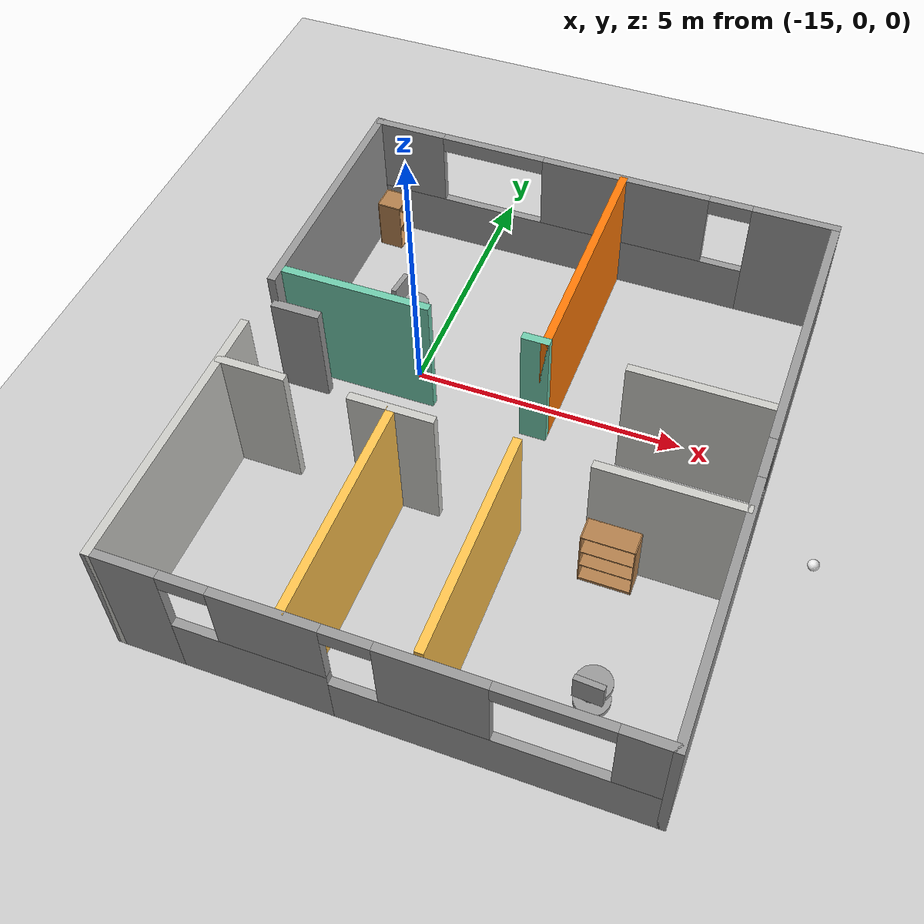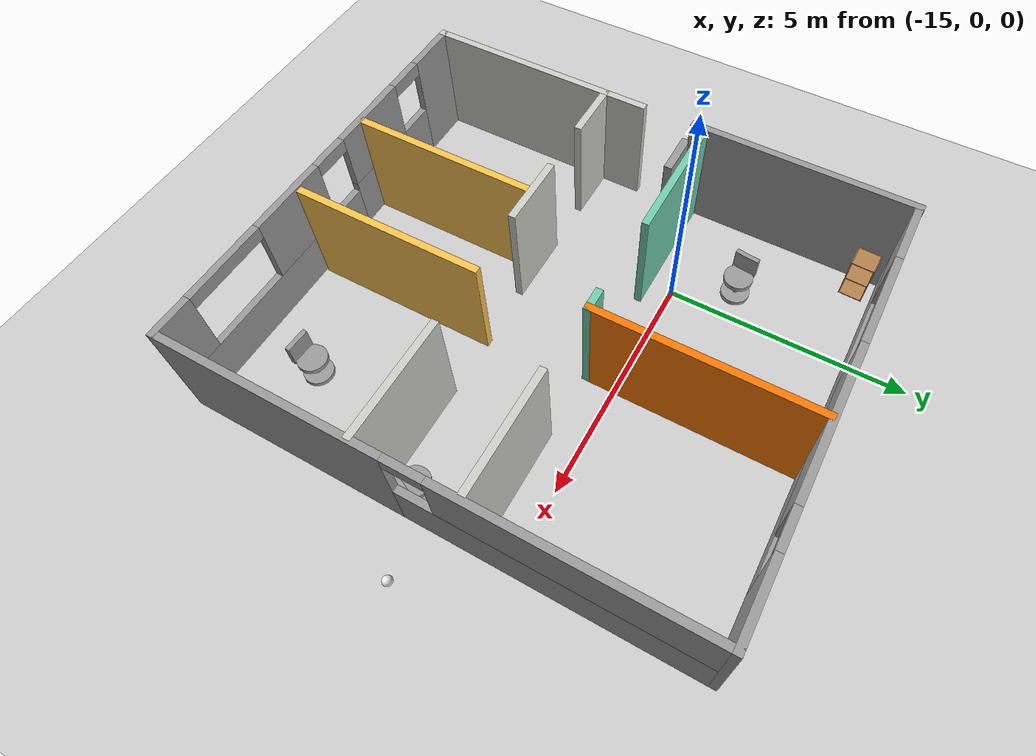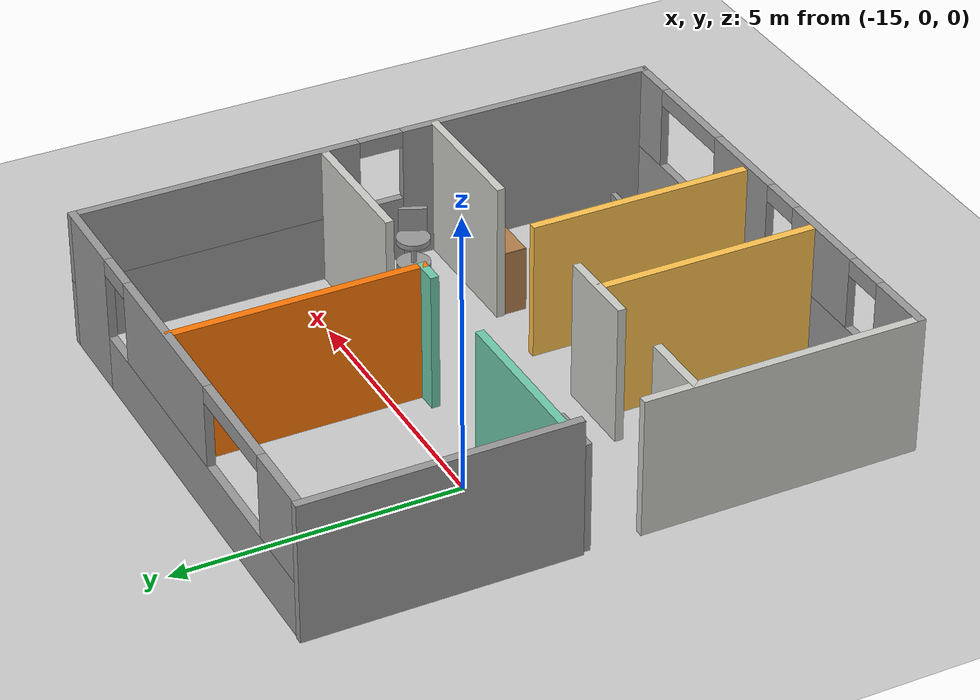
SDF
<sdf version="1.6">
 <world name="default">
  <plugin name="welcome" filename="libwelcome.so"/>
  <light name="sun" type="directional">
   <pose>0 0 10 0 -0 0</pose>
   <diffuse>0.8 0.8 0.8 1</diffuse>
   <specular>0.2 0.2 0.2 1</specular>
   <attenuation>
    <range>1000</range>
    <constant>0.9</constant>
    <linear>0.01</linear>
    <quadratic>0.001</quadratic>
   </attenuation>
   <direction>-0.5 0.1 -0.9</direction>
  </light>
  <model name="ground_plane">
   <static>1</static>
   <link name="link">
    <collision name="collision">
     <geometry><plane><normal>0 0 1</normal><size>100 100</size></plane></geometry>
     <surface>
      <contact><collide_bitmask>65535</collide_bitmask></contact>
      <friction><ode><mu>100</mu><mu2>50</mu2></ode></friction>
     </surface>
    </collision>
    <visual name="visual">
     <cast_shadows>0</cast_shadows>
     <geometry><plane><normal>0 0 1</normal><size>100 100</size></plane></geometry>
     <material>
      <script><uri>file://media/materials/scripts/gazebo.material</uri><name>Gazebo/Grey</name></script>
     </material>
    </visual>
   </link>
  </model>
  <gravity>0 0 -9.8</gravity>
  <magnetic_field>6e-06 2.3e-05 -4.2e-05</magnetic_field>
  <atmosphere type="adiabatic"/>
  <physics name="default_physics" default="0" type="ode">
   <max_step_size>0.001</max_step_size>
   <real_time_factor>1</real_time_factor>
   <real_time_update_rate>1000</real_time_update_rate>
  </physics>
  <scene><ambient>0.4 0.4 0.4 1</ambient><background>0.7 0.7 0.7 1</background><shadows>1</shadows></scene>
  <spherical_coordinates>
   <surface_model>EARTH_WGS84</surface_model>
   <latitude_deg>0</latitude_deg>
   <longitude_deg>0</longitude_deg>
   <elevation>0</elevation>
   <heading_deg>0</heading_deg>
  </spherical_coordinates>
  <model name="Flat">
   <pose>-12.8541 -1.50276 0 0 -0 0</pose>
   <link name="Door_0">
    <collision name="Door_0_Collision">
     <geometry><box><size>0.9 0.17 2</size></box></geometry>
     <pose>0 0 1 0 -0 0</pose>
    </collision>
    <visual name="Door_0_Visual">
     <pose>0 0 1 0 -0 0</pose>
     <geometry><box><size>0.9 0.17 2</size></box></geometry>
     <material>
      <script><uri>file://media/materials/scripts/gazebo.material</uri><name>Gazebo/Grey</name></script>
     </material>
    </visual>
    <pose>-3.99692 0.566674 0 0 -0 0</pose>
   </link>
   <link name="Wall_0">
    <collision name="Wall_0_Collision">
     <geometry><box><size>4.75 0.15 2.5</size></box></geometry>
     <pose>0 0 1.25 0 -0 0</pose>
    </collision>
    <visual name="Wall_0_Visual">
     <pose>0 0 1.25 0 -0 0</pose>
     <geometry><box><size>4.75 0.15 2.5</size></box></geometry>
     <material>
      <script><uri>file://media/materials/scripts/gazebo.material</uri><name>Gazebo/Grey</name></script>
      <ambient>1 1 1 1</ambient>
     </material>
     <meta><layer>0</layer></meta>
    </visual>
    <pose>-4.44029 3.00755 0 0 0 -1.5708</pose>
   </link>
   <link name="Wall_10">
    <pose>0.015295 5.29245 0 0 -0 3.14159</pose>
    <visual name="Wall_10_Visual_0">
     <pose>-3.70189 0 1.25 0 -0 0</pose>
     <geometry><box><size>1.59621 0.15 2.5</size></box></geometry>
     <material>
      <script><uri>file://media/materials/scripts/gazebo.material</uri><name>Gazebo/Grey</name></script>
      <ambient>1 1 1 1</ambient>
     </material>
     <meta><layer>0</layer></meta>
    </visual>
    <collision name="Wall_10_Collision_0">
     <geometry><box><size>1.59621 0.15 2.5</size></box></geometry>
     <pose>-3.70189 0 1.25 0 -0 0</pose>
    </collision>
    <visual name="Wall_10_Visual_1">
     <pose>0.798106 0 0.5 0 -0 0</pose>
     <geometry><box><size>7.40379 0.15 1</size></box></geometry>
     <material>
      <script><uri>file://media/materials/scripts/gazebo.material</uri><name>Gazebo/Grey</name></script>
      <ambient>1 1 1 1</ambient>
     </material>
     <meta><layer>0</layer></meta>
    </visual>
    <collision name="Wall_10_Collision_1">
     <geometry><box><size>7.40379 0.15 1</size></box></geometry>
     <pose>0.798106 0 0.5 0 -0 0</pose>
    </collision>
    <visual name="Wall_10_Visual_2">
     <pose>-0.499578 0 1.75 0 -0 0</pose>
     <geometry><box><size>3.20842 0.15 1.5</size></box></geometry>
     <material>
      <script><uri>file://media/materials/scripts/gazebo.material</uri><name>Gazebo/Grey</name></script>
      <ambient>1 1 1 1</ambient>
     </material>
     <meta><layer>0</layer></meta>
    </visual>
    <collision name="Wall_10_Collision_2">
     <geometry><box><size>3.20842 0.15 1.5</size></box></geometry>
     <pose>-0.499578 0 1.75 0 -0 0</pose>
    </collision>
    <visual name="Wall_10_Visual_3">
     <pose>3.80232 0 1.75 0 -0 0</pose>
     <geometry><box><size>1.39537 0.15 1.5</size></box></geometry>
     <material>
      <script><uri>file://media/materials/scripts/gazebo.material</uri><name>Gazebo/Grey</name></script>
      <ambient>1 1 1 1</ambient>
     </material>
     <meta><layer>0</layer></meta>
    </visual>
    <collision name="Wall_10_Collision_3">
     <geometry><box><size>1.39537 0.15 1.5</size></box></geometry>
     <pose>3.80232 0 1.75 0 -0 0</pose>
    </collision>
    <visual name="Wall_10_Visual_4">
     <pose>-2.50379 0 2.35 0 -0 0</pose>
     <geometry><box><size>0.8 0.15 0.3</size></box></geometry>
     <material>
      <script><uri>file://media/materials/scripts/gazebo.material</uri><name>Gazebo/Grey</name></script>
      <ambient>1 1 1 1</ambient>
     </material>
     <meta><layer>0</layer></meta>
    </visual>
    <collision name="Wall_10_Collision_4">
     <geometry><box><size>0.8 0.15 0.3</size></box></geometry>
     <pose>-2.50379 0 2.35 0 -0 0</pose>
    </collision>
    <visual name="Wall_10_Visual_5">
     <pose>2.10463 0 2.35 0 -0 0</pose>
     <geometry><box><size>2 0.15 0.3</size></box></geometry>
     <material>
      <script><uri>file://media/materials/scripts/gazebo.material</uri><name>Gazebo/Grey</name></script>
      <ambient>1 1 1 1</ambient>
     </material>
     <meta><layer>0</layer></meta>
    </visual>
    <collision name="Wall_10_Collision_5">
     <geometry><box><size>2 0.15 0.3</size></box></geometry>
     <pose>2.10463 0 2.35 0 -0 0</pose>
    </collision>
   </link>
   <link name="Wall_12">
    <collision name="Wall_12_Collision">
     <geometry><box><size>1.25 0.15 2.5</size></box></geometry>
     <pose>0 0 1.25 0 -0 0</pose>
    </collision>
    <visual name="Wall_12_Visual">
     <pose>0 0 1.25 0 -0 0</pose>
     <geometry><box><size>1.25 0.15 2.5</size></box></geometry>
     <material>
      <script><uri>file://media/materials/scripts/gazebo.material</uri><name>Gazebo/CeilingTiled</name></script>
      <ambient>1 1 1 1</ambient>
     </material>
     <meta><layer>0</layer></meta>
    </visual>
    <pose>-3.83383 -1.31025 0 0 -0 0</pose>
   </link>
   <link name="Wall_14">
    <collision name="Wall_14_Collision">
     <geometry><box><size>1.5 0.15 2.5</size></box></geometry>
     <pose>0 0 1.25 0 -0 0</pose>
    </collision>
    <visual name="Wall_14_Visual">
     <pose>0 0 1.25 0 -0 0</pose>
     <geometry><box><size>1.5 0.15 2.5</size></box></geometry>
     <material>
      <script><uri>file://media/materials/scripts/gazebo.material</uri><name>Gazebo/CeilingTiled</name></script>
      <ambient>0.435294 0.796078 0.67451 1</ambient>
     </material>
     <meta><layer>0</layer></meta>
    </visual>
    <pose>-1.35719 -1.29981 0 0 -0 3.14159</pose>
   </link>
   <link name="Wall_16">
    <collision name="Wall_16_Collision">
     <geometry><box><size>2.5 0.15 2.5</size></box></geometry>
     <pose>0 0 1.25 0 -0 0</pose>
    </collision>
    <visual name="Wall_16_Visual">
     <pose>0 0 1.25 0 -0 0</pose>
     <geometry><box><size>2.5 0.15 2.5</size></box></geometry>
     <material>
      <script><uri>file://media/materials/scripts/gazebo.material</uri><name>Gazebo/CeilingTiled</name></script>
      <ambient>1 1 1 1</ambient>
     </material>
     <meta><layer>0</layer></meta>
    </visual>
    <pose>3.20856 -1.26463 0 0 -0 3.14159</pose>
   </link>
   <link name="Wall_21">
    <collision name="Wall_21_Collision">
     <geometry><box><size>4 0.15 2.5</size></box></geometry>
     <pose>0 0 1.25 0 -0 0</pose>
    </collision>
    <visual name="Wall_21_Visual">
     <pose>0 0 1.25 0 -0 0</pose>
     <geometry><box><size>4 0.15 2.5</size></box></geometry>
     <material>
      <script><uri>file://media/materials/scripts/gazebo.material</uri><name>Gazebo/Grey</name></script>
      <ambient>1 0.764706 0.305882 1</ambient>
     </material>
     <meta><layer>0</layer></meta>
    </visual>
    <pose>0.724965 -3.18963 0 0 0 -1.5708</pose>
   </link>
   <link name="Wall_23">
    <collision name="Wall_23_Collision">
     <geometry><box><size>4 0.15 2.5</size></box></geometry>
     <pose>0 0 1.25 0 -0 0</pose>
    </collision>
    <visual name="Wall_23_Visual">
     <pose>0 0 1.25 0 -0 0</pose>
     <geometry><box><size>4 0.15 2.5</size></box></geometry>
     <material>
      <script><uri>file://media/materials/scripts/gazebo.material</uri><name>Gazebo/Grey</name></script>
      <ambient>1 0.764706 0.305882 1</ambient>
     </material>
     <meta><layer>0</layer></meta>
    </visual>
    <pose>-1.35058 -3.29517 0 0 0 -1.5708</pose>
   </link>
   <link name="Wall_25">
    <collision name="Wall_25_Collision">
     <geometry><box><size>2.5 0.15 2.5</size></box></geometry>
     <pose>0 0 1.25 0 -0 0</pose>
    </collision>
    <visual name="Wall_25_Visual">
     <pose>0 0 1.25 0 -0 0</pose>
     <geometry><box><size>2.5 0.15 2.5</size></box></geometry>
     <material>
      <script><uri>file://media/materials/scripts/gazebo.material</uri><name>Gazebo/CeilingTiled</name></script>
      <ambient>1 1 1 1</ambient>
     </material>
     <meta><layer>0</layer></meta>
    </visual>
    <pose>3.13122 0.810917 0 0 -0 0</pose>
   </link>
   <link name="Wall_27">
    <collision name="Wall_27_Collision">
     <geometry><box><size>4.5 0.15 2.5</size></box></geometry>
     <pose>0 0 1.25 0 -0 0</pose>
    </collision>
    <visual name="Wall_27_Visual">
     <pose>0 0 1.25 0 -0 0</pose>
     <geometry><box><size>4.5 0.15 2.5</size></box></geometry>
     <material>
      <script><uri>file://media/materials/scripts/gazebo.material</uri><name>Gazebo/Grey</name></script>
      <ambient>0.996078 0.47451 0.0196078 1</ambient>
     </material>
     <meta><layer>0</layer></meta>
    </visual>
    <pose>0.478714 3.06844 0 0 0 -1.5708</pose>
   </link>
   <link name="Wall_32">
    <collision name="Wall_32_Collision">
     <geometry><box><size>2.75 0.15 2.5</size></box></geometry>
     <pose>0 0 1.25 0 -0 0</pose>
    </collision>
    <visual name="Wall_32_Visual">
     <pose>0 0 1.25 0 -0 0</pose>
     <geometry><box><size>2.75 0.15 2.5</size></box></geometry>
     <material>
      <script><uri>file://media/materials/scripts/gazebo.material</uri><name>Gazebo/Grey</name></script>
      <ambient>0.435294 0.796078 0.67451 1</ambient>
     </material>
     <meta><layer>0</layer></meta>
    </visual>
    <pose>-3.00237 0.951632 0 0 -0 3.14159</pose>
   </link>
   <link name="Wall_34">
    <collision name="Wall_34_Collision">
     <geometry><box><size>0.5 0.15 2.5</size></box></geometry>
     <pose>0 0 1.25 0 -0 0</pose>
    </collision>
    <visual name="Wall_34_Visual">
     <pose>0 0 1.25 0 -0 0</pose>
     <geometry><box><size>0.5 0.15 2.5</size></box></geometry>
     <material>
      <script><uri>file://media/materials/scripts/gazebo.material</uri><name>Gazebo/Grey</name></script>
      <ambient>0.435294 0.796078 0.67451 1</ambient>
     </material>
     <meta><layer>0</layer></meta>
    </visual>
    <pose>0.303714 0.893441 0 0 -0 3.14159</pose>
   </link>
   <link name="Wall_5">
    <collision name="Wall_5_Collision">
     <geometry><box><size>5 0.15 2.5</size></box></geometry>
     <pose>0 0 1.25 0 -0 0</pose>
    </collision>
    <visual name="Wall_5_Visual">
     <pose>0 0 1.25 0 -0 0</pose>
     <geometry><box><size>5 0.15 2.5</size></box></geometry>
     <material>
      <script><uri>file://media/materials/scripts/gazebo.material</uri><name>Gazebo/CeilingTiled</name></script>
      <ambient>1 1 1 1</ambient>
     </material>
     <meta><layer>0</layer></meta>
    </visual>
    <pose>-4.4097 -2.88255 0 0 0 -1.5708</pose>
   </link>
   <link name="Wall_8">
    <pose>0.015295 -5.30755 0 0 -0 0</pose>
    <visual name="Wall_8_Visual_0">
     <pose>-3.8941 0 1.25 0 -0 0</pose>
     <geometry><box><size>1.21179 0.15 2.5</size></box></geometry>
     <material>
      <script><uri>file://media/materials/scripts/gazebo.material</uri><name>Gazebo/Grey</name></script>
      <ambient>1 1 1 1</ambient>
     </material>
     <meta><layer>0</layer></meta>
    </visual>
    <collision name="Wall_8_Collision_0">
     <geometry><box><size>1.21179 0.15 2.5</size></box></geometry>
     <pose>-3.8941 0 1.25 0 -0 0</pose>
    </collision>
    <visual name="Wall_8_Visual_1">
     <pose>-2.00994 0 0.6 0 -0 0</pose>
     <geometry><box><size>2.55653 0.15 1.2</size></box></geometry>
     <material>
      <script><uri>file://media/materials/scripts/gazebo.material</uri><name>Gazebo/Grey</name></script>
      <ambient>1 1 1 1</ambient>
     </material>
     <meta><layer>0</layer></meta>
    </visual>
    <collision name="Wall_8_Collision_1">
     <geometry><box><size>2.55653 0.15 1.2</size></box></geometry>
     <pose>-2.00994 0 0.6 0 -0 0</pose>
    </collision>
    <visual name="Wall_8_Visual_2">
     <pose>1.88416 0 0.5 0 -0 0</pose>
     <geometry><box><size>5.23168 0.15 1</size></box></geometry>
     <material>
      <script><uri>file://media/materials/scripts/gazebo.material</uri><name>Gazebo/Grey</name></script>
      <ambient>1 1 1 1</ambient>
     </material>
     <meta><layer>0</layer></meta>
    </visual>
    <collision name="Wall_8_Collision_2">
     <geometry><box><size>5.23168 0.15 1</size></box></geometry>
     <pose>1.88416 0 0.5 0 -0 0</pose>
    </collision>
    <visual name="Wall_8_Visual_3">
     <pose>0.935405 0 1.75 0 -0 0</pose>
     <geometry><box><size>1.73417 0.15 1.5</size></box></geometry>
     <material>
      <script><uri>file://media/materials/scripts/gazebo.material</uri><name>Gazebo/Grey</name></script>
      <ambient>1 1 1 1</ambient>
     </material>
     <meta><layer>0</layer></meta>
    </visual>
    <collision name="Wall_8_Collision_3">
     <geometry><box><size>1.73417 0.15 1.5</size></box></geometry>
     <pose>0.935405 0 1.75 0 -0 0</pose>
    </collision>
    <visual name="Wall_8_Visual_4">
     <pose>4.05124 0 1.75 0 -0 0</pose>
     <geometry><box><size>0.897511 0.15 1.5</size></box></geometry>
     <material>
      <script><uri>file://media/materials/scripts/gazebo.material</uri><name>Gazebo/Grey</name></script>
      <ambient>1 1 1 1</ambient>
     </material>
     <meta><layer>0</layer></meta>
    </visual>
    <collision name="Wall_8_Collision_4">
     <geometry><box><size>0.897511 0.15 1.5</size></box></geometry>
     <pose>4.05124 0 1.75 0 -0 0</pose>
    </collision>
    <visual name="Wall_8_Visual_5">
     <pose>-1.60994 0 1.85 0 -0 0</pose>
     <geometry><box><size>1.75653 0.15 1.3</size></box></geometry>
     <material>
      <script><uri>file://media/materials/scripts/gazebo.material</uri><name>Gazebo/Grey</name></script>
      <ambient>1 1 1 1</ambient>
     </material>
     <meta><layer>0</layer></meta>
    </visual>
    <collision name="Wall_8_Collision_5">
     <geometry><box><size>1.75653 0.15 1.3</size></box></geometry>
     <pose>-1.60994 0 1.85 0 -0 0</pose>
    </collision>
    <visual name="Wall_8_Visual_6">
     <pose>2.70249 0 2.35 0 -0 0</pose>
     <geometry><box><size>1.8 0.15 0.3</size></box></geometry>
     <material>
      <script><uri>file://media/materials/scripts/gazebo.material</uri><name>Gazebo/Grey</name></script>
      <ambient>1 1 1 1</ambient>
     </material>
     <meta><layer>0</layer></meta>
    </visual>
    <collision name="Wall_8_Collision_6">
     <geometry><box><size>1.8 0.15 0.3</size></box></geometry>
     <pose>2.70249 0 2.35 0 -0 0</pose>
    </collision>
    <visual name="Wall_8_Visual_7">
     <pose>-0.331679 0 2.35 0 -0 0</pose>
     <geometry><box><size>0.8 0.15 0.3</size></box></geometry>
     <material>
      <script><uri>file://media/materials/scripts/gazebo.material</uri><name>Gazebo/Grey</name></script>
      <ambient>1 1 1 1</ambient>
     </material>
     <meta><layer>0</layer></meta>
    </visual>
    <collision name="Wall_8_Collision_7">
     <geometry><box><size>0.8 0.15 0.3</size></box></geometry>
     <pose>-0.331679 0 2.35 0 -0 0</pose>
    </collision>
    <visual name="Wall_8_Visual_8">
     <pose>-2.88821 0 2.35 0 -0 0</pose>
     <geometry><box><size>0.8 0.15 0.3</size></box></geometry>
     <material>
      <script><uri>file://media/materials/scripts/gazebo.material</uri><name>Gazebo/Grey</name></script>
      <ambient>1 1 1 1</ambient>
     </material>
     <meta><layer>0</layer></meta>
    </visual>
    <collision name="Wall_8_Collision_8">
     <geometry><box><size>0.8 0.15 0.3</size></box></geometry>
     <pose>-2.88821 0 2.35 0 -0 0</pose>
    </collision>
   </link>
   <link name="Wall_9">
    <pose>4.44029 -0.007551 0 0 -0 1.5708</pose>
    <visual name="Wall_9_Visual_0">
     <pose>-2.99698 0 1.25 0 -0 0</pose>
     <geometry><box><size>4.75604 0.15 2.5</size></box></geometry>
     <material>
      <script><uri>file://media/materials/scripts/gazebo.material</uri><name>Gazebo/Grey</name></script>
      <ambient>1 1 1 1</ambient>
     </material>
     <meta><layer>0</layer></meta>
    </visual>
    <collision name="Wall_9_Collision_0">
     <geometry><box><size>4.75604 0.15 2.5</size></box></geometry>
     <pose>-2.99698 0 1.25 0 -0 0</pose>
    </collision>
    <visual name="Wall_9_Visual_1">
     <pose>2.37802 0 0.6 0 -0 0</pose>
     <geometry><box><size>5.99396 0.15 1.2</size></box></geometry>
     <material>
      <script><uri>file://media/materials/scripts/gazebo.material</uri><name>Gazebo/Grey</name></script>
      <ambient>1 1 1 1</ambient>
     </material>
     <meta><layer>0</layer></meta>
    </visual>
    <collision name="Wall_9_Collision_1">
     <geometry><box><size>5.99396 0.15 1.2</size></box></geometry>
     <pose>2.37802 0 0.6 0 -0 0</pose>
    </collision>
    <visual name="Wall_9_Visual_2">
     <pose>2.77802 0 1.85 0 -0 0</pose>
     <geometry><box><size>5.19396 0.15 1.3</size></box></geometry>
     <material>
      <script><uri>file://media/materials/scripts/gazebo.material</uri><name>Gazebo/Grey</name></script>
      <ambient>1 1 1 1</ambient>
     </material>
     <meta><layer>0</layer></meta>
    </visual>
    <collision name="Wall_9_Collision_2">
     <geometry><box><size>5.19396 0.15 1.3</size></box></geometry>
     <pose>2.77802 0 1.85 0 -0 0</pose>
    </collision>
    <visual name="Wall_9_Visual_3">
     <pose>-0.218958 0 2.35 0 -0 0</pose>
     <geometry><box><size>0.8 0.15 0.3</size></box></geometry>
     <material>
      <script><uri>file://media/materials/scripts/gazebo.material</uri><name>Gazebo/Grey</name></script>
      <ambient>1 1 1 1</ambient>
     </material>
     <meta><layer>0</layer></meta>
    </visual>
    <collision name="Wall_9_Collision_3">
     <geometry><box><size>0.8 0.15 0.3</size></box></geometry>
     <pose>-0.218958 0 2.35 0 -0 0</pose>
    </collision>
   </link>
   <static>1</static>
  </model>
  <model name="bookshelf">
   <static>1</static>
   <link name="link">
    <inertial><mass>1</mass></inertial>
    <collision name="back">
     <pose>0 0.005 0.6 0 -0 0</pose>
     <geometry><box><size>0.9 0.01 1.2</size></box></geometry>
    </collision>
    <visual name="visual1">
     <pose>0 0.005 0.6 0 -0 0</pose>
     <geometry><box><size>0.9 0.01 1.2</size></box></geometry>
     <material>
      <script><uri>file://media/materials/scripts/gazebo.material</uri><name>Gazebo/Wood</name></script>
     </material>
    </visual>
    <collision name="left_side">
     <pose>0.45 -0.195 0.6 0 -0 0</pose>
     <geometry><box><size>0.02 0.4 1.2</size></box></geometry>
    </collision>
    <visual name="visual2">
     <pose>0.45 -0.195 0.6 0 -0 0</pose>
     <geometry><box><size>0.02 0.4 1.2</size></box></geometry>
     <material>
      <script><uri>file://media/materials/scripts/gazebo.material</uri><name>Gazebo/Wood</name></script>
     </material>
    </visual>
    <collision name="right_side">
     <pose>-0.45 -0.195 0.6 0 -0 0</pose>
     <geometry><box><size>0.02 0.4 1.2</size></box></geometry>
    </collision>
    <visual name="visual3">
     <pose>-0.45 -0.195 0.6 0 -0 0</pose>
     <geometry><box><size>0.02 0.4 1.2</size></box></geometry>
     <material>
      <script><uri>file://media/materials/scripts/gazebo.material</uri><name>Gazebo/Wood</name></script>
     </material>
    </visual>
    <collision name="bottom">
     <pose>0 -0.195 0.03 0 -0 0</pose>
     <geometry><box><size>0.88 0.4 0.06</size></box></geometry>
    </collision>
    <visual name="visual4">
     <pose>0 -0.195 0.03 0 -0 0</pose>
     <geometry><box><size>0.88 0.4 0.06</size></box></geometry>
     <material>
      <script><uri>file://media/materials/scripts/gazebo.material</uri><name>Gazebo/Wood</name></script>
     </material>
    </visual>
    <collision name="top">
     <pose>0 -0.195 1.19 0 -0 0</pose>
     <geometry><box><size>0.88 0.4 0.02</size></box></geometry>
    </collision>
    <visual name="visual5">
     <pose>0 -0.195 1.19 0 -0 0</pose>
     <geometry><box><size>0.88 0.4 0.02</size></box></geometry>
     <material>
      <script><uri>file://media/materials/scripts/gazebo.material</uri><name>Gazebo/Wood</name></script>
     </material>
    </visual>
    <collision name="low_shelf">
     <pose>0 -0.195 0.43 0 -0 0</pose>
     <geometry><box><size>0.88 0.4 0.02</size></box></geometry>
    </collision>
    <visual name="visual6">
     <pose>0 -0.195 0.43 0 -0 0</pose>
     <geometry><box><size>0.88 0.4 0.02</size></box></geometry>
     <material>
      <script><uri>file://media/materials/scripts/gazebo.material</uri><name>Gazebo/Wood</name></script>
     </material>
    </visual>
    <collision name="high_shelf">
     <pose>0 -0.195 0.8 0 -0 0</pose>
     <geometry><box><size>0.88 0.4 0.02</size></box></geometry>
    </collision>
    <visual name="visual7">
     <pose>0 -0.195 0.8 0 -0 0</pose>
     <geometry><box><size>0.88 0.4 0.02</size></box></geometry>
     <material>
      <script><uri>file://media/materials/scripts/gazebo.material</uri><name>Gazebo/Wood</name></script>
     </material>
    </visual>
   </link>
   <pose>-10.4103 -2.86278 0 0 -0 0</pose>
  </model>
  <model name="cabinet">
   <static>1</static>
   <link name="cabinet_bottom_plate">
    <inertial>
     <pose>0 0 -1 0 -0 0</pose>
     <inertia><ixx>2.05</ixx><ixy>0</ixy><ixz>0</ixz><iyy>2.05</iyy><iyz>0</iyz><izz>2.05</izz></inertia>
     <mass>25</mass>
    </inertial>
    <collision name="cabinet_bottom_plate_geom">
     <pose>0 0 0.01 0 -0 0</pose>
     <geometry><box><size>0.45 0.45 0.02</size></box></geometry>
    </collision>
    <visual name="cabinet_bottom_plate_geom_visual">
     <pose>0 0 0.01 0 -0 0</pose>
     <geometry><box><size>0.45 0.45 0.02</size></box></geometry>
     <material>
      <script><uri>file://media/materials/scripts/gazebo.material</uri><name>Gazebo/Wood</name></script>
     </material>
    </visual>
    <collision name="cabinet_bottom_plate_geom_cabinet_back_plate">
     <pose>0.235 0 0.51 0 -0 0</pose>
     <geometry><box><size>0.02 0.45 1.02</size></box></geometry>
    </collision>
    <visual name="cabinet_bottom_plate_geom_cabinet_back_plate_visual">
     <pose>0.235 0 0.51 0 -0 0</pose>
     <geometry><box><size>0.02 0.45 1.02</size></box></geometry>
     <material>
      <script><uri>file://media/materials/scripts/gazebo.material</uri><name>Gazebo/Wood</name></script>
     </material>
    </visual>
    <collision name="cabinet_bottom_plate_geom_cabinet_left_plate">
     <pose>0 0.235 0.51 0 -0 0</pose>
     <geometry><box><size>0.45 0.02 1.02</size></box></geometry>
    </collision>
    <visual name="cabinet_bottom_plate_geom_cabinet_left_plate_visual">
     <pose>0 0.235 0.51 0 -0 0</pose>
     <geometry><box><size>0.45 0.02 1.02</size></box></geometry>
     <material>
      <script><uri>file://media/materials/scripts/gazebo.material</uri><name>Gazebo/Wood</name></script>
     </material>
    </visual>
    <collision name="cabinet_bottom_plate_geom_cabinet_middle_plate">
     <pose>0 0 0.51 0 -0 0</pose>
     <geometry><box><size>0.45 0.45 0.02</size></box></geometry>
    </collision>
    <visual name="cabinet_bottom_plate_geom_cabinet_middle_plate_visual">
     <pose>0 0 0.51 0 -0 0</pose>
     <geometry><box><size>0.45 0.45 0.02</size></box></geometry>
     <material>
      <script><uri>file://media/materials/scripts/gazebo.material</uri><name>Gazebo/Wood</name></script>
     </material>
    </visual>
    <collision name="cabinet_bottom_plate_geom_cabinet_right_plate">
     <pose>0 -0.235 0.51 0 -0 0</pose>
     <geometry><box><size>0.45 0.02 1.02</size></box></geometry>
    </collision>
    <visual name="cabinet_bottom_plate_geom_cabinet_right_plate_visual">
     <pose>0 -0.235 0.51 0 -0 0</pose>
     <geometry><box><size>0.45 0.02 1.02</size></box></geometry>
     <material>
      <script><uri>file://media/materials/scripts/gazebo.material</uri><name>Gazebo/Wood</name></script>
     </material>
    </visual>
    <collision name="cabinet_bottom_plate_geom_cabinet_top_plate">
     <pose>0 0 1.01 0 -0 0</pose>
     <geometry><box><size>0.45 0.45 0.02</size></box></geometry>
    </collision>
    <visual name="cabinet_bottom_plate_geom_cabinet_top_plate_visual">
     <pose>0 0 1.01 0 -0 0</pose>
     <geometry><box><size>0.45 0.45 0.02</size></box></geometry>
     <material>
      <script><uri>file://media/materials/scripts/gazebo.material</uri><name>Gazebo/Wood</name></script>
     </material>
    </visual>
   </link>
   <pose>-16.8971 3.32018 0 0 -0 3.11278</pose>
  </model>
  <model name="Spin_Chair">
   <link name="link_0">
    <pose>-0.00485 0.01218 -0.125 0 -0 0</pose>
    <inertial>
     <mass>1</mass>
     <inertia><ixx>0.145833</ixx><ixy>0</ixy><ixz>0</ixz><iyy>0.145833</iyy><iyz>0</iyz><izz>0.125</izz></inertia>
    </inertial>
    <visual name="visual">
     <geometry><cylinder><radius>0.05</radius><length>0.4</length></cylinder></geometry>
     <material>
      <lighting>1</lighting>
      <script><uri>file://media/materials/scripts/gazebo.material</uri><name>Gazebo/Grey</name></script>
      <shader type="pixel"><normal_map>__default__</normal_map></shader>
      <ambient>0.3 0.3 0.3 1</ambient>
      <diffuse>0.7 0.7 0.7 1</diffuse>
      <specular>0.01 0.01 0.01 1</specular>
      <emissive>0 0 0 1</emissive>
     </material>
    </visual>
    <collision name="collision">
     <geometry><cylinder><radius>0.05</radius><length>0.4</length></cylinder></geometry>
     <surface>
      <friction>
       <ode><mu>1</mu><mu2>1</mu2><fdir1>0 0 0</fdir1><slip1>0</slip1><slip2>0</slip2></ode>
       <torsional>
        <coefficient>1</coefficient>
        <patch_radius>0</patch_radius>
        <surface_radius>0</surface_radius>
        <use_patch_radius>1</use_patch_radius>
        <ode><slip>0</slip></ode>
       </torsional>
      </friction>
      <bounce><restitution_coefficient>0</restitution_coefficient><threshold>1e+06</threshold></bounce>
      <contact>
       <collide_without_contact>0</collide_without_contact>
       <collide_without_contact_bitmask>1</collide_without_contact_bitmask>
       <collide_bitmask>1</collide_bitmask>
       <ode>
        <soft_cfm>0</soft_cfm>
        <soft_erp>0.2</soft_erp>
        <kp>1e+13</kp>
        <kd>1</kd>
        <max_vel>0.01</max_vel>
        <min_depth>0</min_depth>
       </ode>
       <bullet>
        <split_impulse>1</split_impulse>
        <split_impulse_penetration_threshold>-0.01</split_impulse_penetration_threshold>
        <soft_cfm>0</soft_cfm>
        <soft_erp>0.2</soft_erp>
        <kp>1e+13</kp>
        <kd>1</kd>
       </bullet>
      </contact>
     </surface>
    </collision>
   </link>
   <link name="link_1">
    <pose>-0.000152 0.016879 0.125001 0 -0 0</pose>
    <inertial>
     <mass>1</mass>
     <inertia><ixx>0.145833</ixx><ixy>0</ixy><ixz>0</ixz><iyy>0.145833</iyy><iyz>0</iyz><izz>0.125</izz></inertia>
    </inertial>
    <visual name="visual">
     <geometry><cylinder><radius>0.3</radius><length>0.1</length></cylinder></geometry>
     <material>
      <lighting>1</lighting>
      <script><uri>file://media/materials/scripts/gazebo.material</uri><name>Gazebo/Grey</name></script>
      <shader type="pixel"><normal_map>__default__</normal_map></shader>
      <ambient>0.3 0.3 0.3 1</ambient>
      <diffuse>0.7 0.7 0.7 1</diffuse>
      <specular>0.01 0.01 0.01 1</specular>
      <emissive>0 0 0 1</emissive>
     </material>
    </visual>
    <collision name="collision">
     <geometry><cylinder><radius>0.3</radius><length>0.1</length></cylinder></geometry>
     <surface>
      <friction>
       <ode><mu>1</mu><mu2>1</mu2><fdir1>0 0 0</fdir1><slip1>0</slip1><slip2>0</slip2></ode>
       <torsional>
        <coefficient>1</coefficient>
        <patch_radius>0</patch_radius>
        <surface_radius>0</surface_radius>
        <use_patch_radius>1</use_patch_radius>
        <ode><slip>0</slip></ode>
       </torsional>
      </friction>
      <bounce><restitution_coefficient>0</restitution_coefficient><threshold>1e+06</threshold></bounce>
      <contact>
       <collide_without_contact>0</collide_without_contact>
       <collide_without_contact_bitmask>1</collide_without_contact_bitmask>
       <collide_bitmask>1</collide_bitmask>
       <ode>
        <soft_cfm>0</soft_cfm>
        <soft_erp>0.2</soft_erp>
        <kp>1e+13</kp>
        <kd>1</kd>
        <max_vel>0.01</max_vel>
        <min_depth>0</min_depth>
       </ode>
       <bullet>
        <split_impulse>1</split_impulse>
        <split_impulse_penetration_threshold>-0.01</split_impulse_penetration_threshold>
        <soft_cfm>0</soft_cfm>
        <soft_erp>0.2</soft_erp>
        <kp>1e+13</kp>
        <kd>1</kd>
       </bullet>
      </contact>
     </surface>
    </collision>
   </link>
   <link name="link_1_clone">
    <pose>-0.00485 0.01218 -0.375 0 -0 0</pose>
    <inertial>
     <mass>1</mass>
     <inertia><ixx>0.145833</ixx><ixy>0</ixy><ixz>0</ixz><iyy>0.145833</iyy><iyz>0</iyz><izz>0.125</izz></inertia>
    </inertial>
    <visual name="visual">
     <geometry><cylinder><radius>0.3</radius><length>0.1</length></cylinder></geometry>
     <material>
      <lighting>1</lighting>
      <script><uri>file://media/materials/scripts/gazebo.material</uri><name>Gazebo/Grey</name></script>
      <shader type="pixel"><normal_map>__default__</normal_map></shader>
      <ambient>0.3 0.3 0.3 1</ambient>
      <diffuse>0.7 0.7 0.7 1</diffuse>
      <specular>0.01 0.01 0.01 1</specular>
      <emissive>0 0 0 1</emissive>
     </material>
    </visual>
    <collision name="collision">
     <geometry><cylinder><radius>0.3</radius><length>0.1</length></cylinder></geometry>
     <surface>
      <friction>
       <ode><mu>1</mu><mu2>1</mu2><fdir1>0 0 0</fdir1><slip1>0</slip1><slip2>0</slip2></ode>
       <torsional>
        <coefficient>1</coefficient>
        <patch_radius>0</patch_radius>
        <surface_radius>0</surface_radius>
        <use_patch_radius>1</use_patch_radius>
        <ode><slip>0</slip></ode>
       </torsional>
      </friction>
      <bounce><restitution_coefficient>0</restitution_coefficient><threshold>1e+06</threshold></bounce>
      <contact>
       <collide_without_contact>0</collide_without_contact>
       <collide_without_contact_bitmask>1</collide_without_contact_bitmask>
       <collide_bitmask>1</collide_bitmask>
       <ode>
        <soft_cfm>0</soft_cfm>
        <soft_erp>0.2</soft_erp>
        <kp>1e+13</kp>
        <kd>1</kd>
        <max_vel>0.01</max_vel>
        <min_depth>0</min_depth>
       </ode>
       <bullet>
        <split_impulse>1</split_impulse>
        <split_impulse_penetration_threshold>-0.01</split_impulse_penetration_threshold>
        <soft_cfm>0</soft_cfm>
        <soft_erp>0.2</soft_erp>
        <kp>1e+13</kp>
        <kd>1</kd>
       </bullet>
      </contact>
     </surface>
    </collision>
   </link>
   <link name="link_2">
    <pose>0.000733 -0.234176 0.355001 0 -3e-06 0.003528</pose>
    <inertial>
     <mass>1</mass>
     <inertia>
      <ixx>0.166667</ixx>
      <ixy>0</ixy>
      <ixz>0</ixz>
      <iyy>0.166667</iyy>
      <iyz>0</iyz>
      <izz>0.166667</izz>
     </inertia>
    </inertial>
    <visual name="visual">
     <geometry><box><size>0.5 0.1 0.5</size></box></geometry>
     <material>
      <lighting>1</lighting>
      <script><uri>file://media/materials/scripts/gazebo.material</uri><name>Gazebo/Grey</name></script>
      <shader type="pixel"><normal_map>__default__</normal_map></shader>
      <ambient>0.3 0.3 0.3 1</ambient>
      <diffuse>0.7 0.7 0.7 1</diffuse>
      <specular>0.01 0.01 0.01 1</specular>
      <emissive>0 0 0 1</emissive>
     </material>
    </visual>
    <collision name="collision">
     <geometry><box><size>0.5 0.1 0.5</size></box></geometry>
     <surface>
      <friction>
       <ode><mu>1</mu><mu2>1</mu2><fdir1>0 0 0</fdir1><slip1>0</slip1><slip2>0</slip2></ode>
       <torsional>
        <coefficient>1</coefficient>
        <patch_radius>0</patch_radius>
        <surface_radius>0</surface_radius>
        <use_patch_radius>1</use_patch_radius>
        <ode><slip>0</slip></ode>
       </torsional>
      </friction>
      <bounce><restitution_coefficient>0</restitution_coefficient><threshold>1e+06</threshold></bounce>
      <contact>
       <collide_without_contact>0</collide_without_contact>
       <collide_without_contact_bitmask>1</collide_without_contact_bitmask>
       <collide_bitmask>1</collide_bitmask>
       <ode>
        <soft_cfm>0</soft_cfm>
        <soft_erp>0.2</soft_erp>
        <kp>1e+13</kp>
        <kd>1</kd>
        <max_vel>0.01</max_vel>
        <min_depth>0</min_depth>
       </ode>
       <bullet>
        <split_impulse>1</split_impulse>
        <split_impulse_penetration_threshold>-0.01</split_impulse_penetration_threshold>
        <soft_cfm>0</soft_cfm>
        <soft_erp>0.2</soft_erp>
        <kp>1e+13</kp>
        <kd>1</kd>
       </bullet>
      </contact>
     </surface>
    </collision>
   </link>
   <joint name="link_0_JOINT_1" type="revolute">
    <parent>link_0</parent>
    <child>link_1</child>
    <axis>
     <xyz>0 0 1</xyz>
     <use_parent_model_frame>0</use_parent_model_frame>
     <limit>
      <lower>-1.79769e+308</lower>
      <upper>1.79769e+308</upper>
      <effort>-1</effort>
      <velocity>-1</velocity>
     </limit>
     <dynamics>
      <spring_reference>0</spring_reference>
      <spring_stiffness>0</spring_stiffness>
      <damping>0</damping>
      <friction>0</friction>
     </dynamics>
    </axis>
    <physics>
     <ode><limit><cfm>0</cfm><erp>0.2</erp></limit><suspension><cfm>0</cfm><erp>0.2</erp></suspension></ode>
    </physics>
   </joint>
   <joint name="link_0_JOINT_3" type="revolute">
    <parent>link_0</parent>
    <child>link_1_clone</child>
    <axis>
     <xyz>0 0 1</xyz>
     <use_parent_model_frame>0</use_parent_model_frame>
     <limit>
      <lower>-1.79769e+308</lower>
      <upper>1.79769e+308</upper>
      <effort>-1</effort>
      <velocity>-1</velocity>
     </limit>
     <dynamics>
      <spring_reference>0</spring_reference>
      <spring_stiffness>0</spring_stiffness>
      <damping>0</damping>
      <friction>0</friction>
     </dynamics>
    </axis>
    <physics>
     <ode><limit><cfm>0</cfm><erp>0.2</erp></limit><suspension><cfm>0</cfm><erp>0.2</erp></suspension></ode>
    </physics>
   </joint>
   <joint name="link_1_JOINT_2" type="fixed">
    <parent>link_1</parent>
    <child>link_2</child>
    <physics>
     <ode><limit><cfm>0</cfm><erp>0.2</erp></limit><suspension><cfm>0</cfm><erp>0.2</erp></suspension></ode>
    </physics>
   </joint>
   <static>0</static>
   <pose>-9.95981 -5.30249 0.424995 1e-06 0 -0.055504</pose>
  </model>
  <model name="Spin_Chair_0">
   <link name="link_0">
    <pose>-0.00485 0.01218 -0.125 0 -0 0</pose>
    <inertial>
     <mass>1</mass>
     <inertia><ixx>0.145833</ixx><ixy>0</ixy><ixz>0</ixz><iyy>0.145833</iyy><iyz>0</iyz><izz>0.125</izz></inertia>
    </inertial>
    <visual name="visual">
     <geometry><cylinder><radius>0.05</radius><length>0.4</length></cylinder></geometry>
     <material>
      <lighting>1</lighting>
      <script><uri>file://media/materials/scripts/gazebo.material</uri><name>Gazebo/Grey</name></script>
      <shader type="pixel"><normal_map>__default__</normal_map></shader>
      <ambient>0.3 0.3 0.3 1</ambient>
      <diffuse>0.7 0.7 0.7 1</diffuse>
      <specular>0.01 0.01 0.01 1</specular>
      <emissive>0 0 0 1</emissive>
     </material>
    </visual>
    <collision name="collision">
     <geometry><cylinder><radius>0.05</radius><length>0.4</length></cylinder></geometry>
     <surface>
      <friction>
       <ode><mu>1</mu><mu2>1</mu2><fdir1>0 0 0</fdir1><slip1>0</slip1><slip2>0</slip2></ode>
       <torsional>
        <coefficient>1</coefficient>
        <patch_radius>0</patch_radius>
        <surface_radius>0</surface_radius>
        <use_patch_radius>1</use_patch_radius>
        <ode><slip>0</slip></ode>
       </torsional>
      </friction>
      <bounce><restitution_coefficient>0</restitution_coefficient><threshold>1e+06</threshold></bounce>
      <contact>
       <collide_without_contact>0</collide_without_contact>
       <collide_without_contact_bitmask>1</collide_without_contact_bitmask>
       <collide_bitmask>1</collide_bitmask>
       <ode>
        <soft_cfm>0</soft_cfm>
        <soft_erp>0.2</soft_erp>
        <kp>1e+13</kp>
        <kd>1</kd>
        <max_vel>0.01</max_vel>
        <min_depth>0</min_depth>
       </ode>
       <bullet>
        <split_impulse>1</split_impulse>
        <split_impulse_penetration_threshold>-0.01</split_impulse_penetration_threshold>
        <soft_cfm>0</soft_cfm>
        <soft_erp>0.2</soft_erp>
        <kp>1e+13</kp>
        <kd>1</kd>
       </bullet>
      </contact>
     </surface>
    </collision>
   </link>
   <link name="link_1">
    <pose>-0.000152 0.016879 0.125001 0 -0 0</pose>
    <inertial>
     <mass>1</mass>
     <inertia><ixx>0.145833</ixx><ixy>0</ixy><ixz>0</ixz><iyy>0.145833</iyy><iyz>0</iyz><izz>0.125</izz></inertia>
    </inertial>
    <visual name="visual">
     <geometry><cylinder><radius>0.3</radius><length>0.1</length></cylinder></geometry>
     <material>
      <lighting>1</lighting>
      <script><uri>file://media/materials/scripts/gazebo.material</uri><name>Gazebo/Grey</name></script>
      <shader type="pixel"><normal_map>__default__</normal_map></shader>
      <ambient>0.3 0.3 0.3 1</ambient>
      <diffuse>0.7 0.7 0.7 1</diffuse>
      <specular>0.01 0.01 0.01 1</specular>
      <emissive>0 0 0 1</emissive>
     </material>
    </visual>
    <collision name="collision">
     <geometry><cylinder><radius>0.3</radius><length>0.1</length></cylinder></geometry>
     <surface>
      <friction>
       <ode><mu>1</mu><mu2>1</mu2><fdir1>0 0 0</fdir1><slip1>0</slip1><slip2>0</slip2></ode>
       <torsional>
        <coefficient>1</coefficient>
        <patch_radius>0</patch_radius>
        <surface_radius>0</surface_radius>
        <use_patch_radius>1</use_patch_radius>
        <ode><slip>0</slip></ode>
       </torsional>
      </friction>
      <bounce><restitution_coefficient>0</restitution_coefficient><threshold>1e+06</threshold></bounce>
      <contact>
       <collide_without_contact>0</collide_without_contact>
       <collide_without_contact_bitmask>1</collide_without_contact_bitmask>
       <collide_bitmask>1</collide_bitmask>
       <ode>
        <soft_cfm>0</soft_cfm>
        <soft_erp>0.2</soft_erp>
        <kp>1e+13</kp>
        <kd>1</kd>
        <max_vel>0.01</max_vel>
        <min_depth>0</min_depth>
       </ode>
       <bullet>
        <split_impulse>1</split_impulse>
        <split_impulse_penetration_threshold>-0.01</split_impulse_penetration_threshold>
        <soft_cfm>0</soft_cfm>
        <soft_erp>0.2</soft_erp>
        <kp>1e+13</kp>
        <kd>1</kd>
       </bullet>
      </contact>
     </surface>
    </collision>
   </link>
   <link name="link_1_clone">
    <pose>-0.00485 0.01218 -0.375 0 -0 0</pose>
    <inertial>
     <mass>1</mass>
     <inertia><ixx>0.145833</ixx><ixy>0</ixy><ixz>0</ixz><iyy>0.145833</iyy><iyz>0</iyz><izz>0.125</izz></inertia>
    </inertial>
    <visual name="visual">
     <geometry><cylinder><radius>0.3</radius><length>0.1</length></cylinder></geometry>
     <material>
      <lighting>1</lighting>
      <script><uri>file://media/materials/scripts/gazebo.material</uri><name>Gazebo/Grey</name></script>
      <shader type="pixel"><normal_map>__default__</normal_map></shader>
      <ambient>0.3 0.3 0.3 1</ambient>
      <diffuse>0.7 0.7 0.7 1</diffuse>
      <specular>0.01 0.01 0.01 1</specular>
      <emissive>0 0 0 1</emissive>
     </material>
    </visual>
    <collision name="collision">
     <geometry><cylinder><radius>0.3</radius><length>0.1</length></cylinder></geometry>
     <surface>
      <friction>
       <ode><mu>1</mu><mu2>1</mu2><fdir1>0 0 0</fdir1><slip1>0</slip1><slip2>0</slip2></ode>
       <torsional>
        <coefficient>1</coefficient>
        <patch_radius>0</patch_radius>
        <surface_radius>0</surface_radius>
        <use_patch_radius>1</use_patch_radius>
        <ode><slip>0</slip></ode>
       </torsional>
      </friction>
      <bounce><restitution_coefficient>0</restitution_coefficient><threshold>1e+06</threshold></bounce>
      <contact>
       <collide_without_contact>0</collide_without_contact>
       <collide_without_contact_bitmask>1</collide_without_contact_bitmask>
       <collide_bitmask>1</collide_bitmask>
       <ode>
        <soft_cfm>0</soft_cfm>
        <soft_erp>0.2</soft_erp>
        <kp>1e+13</kp>
        <kd>1</kd>
        <max_vel>0.01</max_vel>
        <min_depth>0</min_depth>
       </ode>
       <bullet>
        <split_impulse>1</split_impulse>
        <split_impulse_penetration_threshold>-0.01</split_impulse_penetration_threshold>
        <soft_cfm>0</soft_cfm>
        <soft_erp>0.2</soft_erp>
        <kp>1e+13</kp>
        <kd>1</kd>
       </bullet>
      </contact>
     </surface>
    </collision>
   </link>
   <link name="link_2">
    <pose>0.000733 -0.234176 0.355001 0 -3e-06 0.003528</pose>
    <inertial>
     <mass>1</mass>
     <inertia>
      <ixx>0.166667</ixx>
      <ixy>0</ixy>
      <ixz>0</ixz>
      <iyy>0.166667</iyy>
      <iyz>0</iyz>
      <izz>0.166667</izz>
     </inertia>
    </inertial>
    <visual name="visual">
     <geometry><box><size>0.5 0.1 0.5</size></box></geometry>
     <material>
      <lighting>1</lighting>
      <script><uri>file://media/materials/scripts/gazebo.material</uri><name>Gazebo/Grey</name></script>
      <shader type="pixel"><normal_map>__default__</normal_map></shader>
      <ambient>0.3 0.3 0.3 1</ambient>
      <diffuse>0.7 0.7 0.7 1</diffuse>
      <specular>0.01 0.01 0.01 1</specular>
      <emissive>0 0 0 1</emissive>
     </material>
    </visual>
    <collision name="collision">
     <geometry><box><size>0.5 0.1 0.5</size></box></geometry>
     <surface>
      <friction>
       <ode><mu>1</mu><mu2>1</mu2><fdir1>0 0 0</fdir1><slip1>0</slip1><slip2>0</slip2></ode>
       <torsional>
        <coefficient>1</coefficient>
        <patch_radius>0</patch_radius>
        <surface_radius>0</surface_radius>
        <use_patch_radius>1</use_patch_radius>
        <ode><slip>0</slip></ode>
       </torsional>
      </friction>
      <bounce><restitution_coefficient>0</restitution_coefficient><threshold>1e+06</threshold></bounce>
      <contact>
       <collide_without_contact>0</collide_without_contact>
       <collide_without_contact_bitmask>1</collide_without_contact_bitmask>
       <collide_bitmask>1</collide_bitmask>
       <ode>
        <soft_cfm>0</soft_cfm>
        <soft_erp>0.2</soft_erp>
        <kp>1e+13</kp>
        <kd>1</kd>
        <max_vel>0.01</max_vel>
        <min_depth>0</min_depth>
       </ode>
       <bullet>
        <split_impulse>1</split_impulse>
        <split_impulse_penetration_threshold>-0.01</split_impulse_penetration_threshold>
        <soft_cfm>0</soft_cfm>
        <soft_erp>0.2</soft_erp>
        <kp>1e+13</kp>
        <kd>1</kd>
       </bullet>
      </contact>
     </surface>
    </collision>
   </link>
   <joint name="link_0_JOINT_1" type="revolute">
    <parent>link_0</parent>
    <child>link_1</child>
    <axis>
     <xyz>0 0 1</xyz>
     <use_parent_model_frame>0</use_parent_model_frame>
     <limit>
      <lower>-1.79769e+308</lower>
      <upper>1.79769e+308</upper>
      <effort>-1</effort>
      <velocity>-1</velocity>
     </limit>
     <dynamics>
      <spring_reference>0</spring_reference>
      <spring_stiffness>0</spring_stiffness>
      <damping>0</damping>
      <friction>0</friction>
     </dynamics>
    </axis>
    <physics>
     <ode><limit><cfm>0</cfm><erp>0.2</erp></limit><suspension><cfm>0</cfm><erp>0.2</erp></suspension></ode>
    </physics>
   </joint>
   <joint name="link_0_JOINT_3" type="revolute">
    <parent>link_0</parent>
    <child>link_1_clone</child>
    <axis>
     <xyz>0 0 1</xyz>
     <use_parent_model_frame>0</use_parent_model_frame>
     <limit>
      <lower>-1.79769e+308</lower>
      <upper>1.79769e+308</upper>
      <effort>-1</effort>
      <velocity>-1</velocity>
     </limit>
     <dynamics>
      <spring_reference>0</spring_reference>
      <spring_stiffness>0</spring_stiffness>
      <damping>0</damping>
      <friction>0</friction>
     </dynamics>
    </axis>
    <physics>
     <ode><limit><cfm>0</cfm><erp>0.2</erp></limit><suspension><cfm>0</cfm><erp>0.2</erp></suspension></ode>
    </physics>
   </joint>
   <joint name="link_1_JOINT_2" type="fixed">
    <parent>link_1</parent>
    <child>link_2</child>
    <physics>
     <ode><limit><cfm>0</cfm><erp>0.2</erp></limit><suspension><cfm>0</cfm><erp>0.2</erp></suspension></ode>
    </physics>
   </joint>
   <static>0</static>
   <pose>-15.6236 1.16178 0.424998 1e-06 -0 -1.68944</pose>
  </model>
  <model name="Spin_Chair_1">
   <link name="link_0">
    <pose>-0.00485 0.01218 -0.125 0 -0 0</pose>
    <inertial>
     <mass>1</mass>
     <inertia><ixx>0.145833</ixx><ixy>0</ixy><ixz>0</ixz><iyy>0.145833</iyy><iyz>0</iyz><izz>0.125</izz></inertia>
    </inertial>
    <visual name="visual">
     <geometry><cylinder><radius>0.05</radius><length>0.4</length></cylinder></geometry>
     <material>
      <lighting>1</lighting>
      <script><uri>file://media/materials/scripts/gazebo.material</uri><name>Gazebo/Grey</name></script>
      <shader type="pixel"><normal_map>__default__</normal_map></shader>
      <ambient>0.3 0.3 0.3 1</ambient>
      <diffuse>0.7 0.7 0.7 1</diffuse>
      <specular>0.01 0.01 0.01 1</specular>
      <emissive>0 0 0 1</emissive>
     </material>
    </visual>
    <collision name="collision">
     <geometry><cylinder><radius>0.05</radius><length>0.4</length></cylinder></geometry>
     <surface>
      <friction>
       <ode><mu>1</mu><mu2>1</mu2><fdir1>0 0 0</fdir1><slip1>0</slip1><slip2>0</slip2></ode>
       <torsional>
        <coefficient>1</coefficient>
        <patch_radius>0</patch_radius>
        <surface_radius>0</surface_radius>
        <use_patch_radius>1</use_patch_radius>
        <ode><slip>0</slip></ode>
       </torsional>
      </friction>
      <bounce><restitution_coefficient>0</restitution_coefficient><threshold>1e+06</threshold></bounce>
      <contact>
       <collide_without_contact>0</collide_without_contact>
       <collide_without_contact_bitmask>1</collide_without_contact_bitmask>
       <collide_bitmask>1</collide_bitmask>
       <ode>
        <soft_cfm>0</soft_cfm>
        <soft_erp>0.2</soft_erp>
        <kp>1e+13</kp>
        <kd>1</kd>
        <max_vel>0.01</max_vel>
        <min_depth>0</min_depth>
       </ode>
       <bullet>
        <split_impulse>1</split_impulse>
        <split_impulse_penetration_threshold>-0.01</split_impulse_penetration_threshold>
        <soft_cfm>0</soft_cfm>
        <soft_erp>0.2</soft_erp>
        <kp>1e+13</kp>
        <kd>1</kd>
       </bullet>
      </contact>
     </surface>
    </collision>
   </link>
   <link name="link_1">
    <pose>-0.000152 0.016879 0.125001 0 -0 0</pose>
    <inertial>
     <mass>1</mass>
     <inertia><ixx>0.145833</ixx><ixy>0</ixy><ixz>0</ixz><iyy>0.145833</iyy><iyz>0</iyz><izz>0.125</izz></inertia>
    </inertial>
    <visual name="visual">
     <geometry><cylinder><radius>0.3</radius><length>0.1</length></cylinder></geometry>
     <material>
      <lighting>1</lighting>
      <script><uri>file://media/materials/scripts/gazebo.material</uri><name>Gazebo/Grey</name></script>
      <shader type="pixel"><normal_map>__default__</normal_map></shader>
      <ambient>0.3 0.3 0.3 1</ambient>
      <diffuse>0.7 0.7 0.7 1</diffuse>
      <specular>0.01 0.01 0.01 1</specular>
      <emissive>0 0 0 1</emissive>
     </material>
    </visual>
    <collision name="collision">
     <geometry><cylinder><radius>0.3</radius><length>0.1</length></cylinder></geometry>
     <surface>
      <friction>
       <ode><mu>1</mu><mu2>1</mu2><fdir1>0 0 0</fdir1><slip1>0</slip1><slip2>0</slip2></ode>
       <torsional>
        <coefficient>1</coefficient>
        <patch_radius>0</patch_radius>
        <surface_radius>0</surface_radius>
        <use_patch_radius>1</use_patch_radius>
        <ode><slip>0</slip></ode>
       </torsional>
      </friction>
      <bounce><restitution_coefficient>0</restitution_coefficient><threshold>1e+06</threshold></bounce>
      <contact>
       <collide_without_contact>0</collide_without_contact>
       <collide_without_contact_bitmask>1</collide_without_contact_bitmask>
       <collide_bitmask>1</collide_bitmask>
       <ode>
        <soft_cfm>0</soft_cfm>
        <soft_erp>0.2</soft_erp>
        <kp>1e+13</kp>
        <kd>1</kd>
        <max_vel>0.01</max_vel>
        <min_depth>0</min_depth>
       </ode>
       <bullet>
        <split_impulse>1</split_impulse>
        <split_impulse_penetration_threshold>-0.01</split_impulse_penetration_threshold>
        <soft_cfm>0</soft_cfm>
        <soft_erp>0.2</soft_erp>
        <kp>1e+13</kp>
        <kd>1</kd>
       </bullet>
      </contact>
     </surface>
    </collision>
   </link>
   <link name="link_1_clone">
    <pose>-0.00485 0.01218 -0.375 0 -0 0</pose>
    <inertial>
     <mass>1</mass>
     <inertia><ixx>0.145833</ixx><ixy>0</ixy><ixz>0</ixz><iyy>0.145833</iyy><iyz>0</iyz><izz>0.125</izz></inertia>
    </inertial>
    <visual name="visual">
     <geometry><cylinder><radius>0.3</radius><length>0.1</length></cylinder></geometry>
     <material>
      <lighting>1</lighting>
      <script><uri>file://media/materials/scripts/gazebo.material</uri><name>Gazebo/Grey</name></script>
      <shader type="pixel"><normal_map>__default__</normal_map></shader>
      <ambient>0.3 0.3 0.3 1</ambient>
      <diffuse>0.7 0.7 0.7 1</diffuse>
      <specular>0.01 0.01 0.01 1</specular>
      <emissive>0 0 0 1</emissive>
     </material>
    </visual>
    <collision name="collision">
     <geometry><cylinder><radius>0.3</radius><length>0.1</length></cylinder></geometry>
     <surface>
      <friction>
       <ode><mu>1</mu><mu2>1</mu2><fdir1>0 0 0</fdir1><slip1>0</slip1><slip2>0</slip2></ode>
       <torsional>
        <coefficient>1</coefficient>
        <patch_radius>0</patch_radius>
        <surface_radius>0</surface_radius>
        <use_patch_radius>1</use_patch_radius>
        <ode><slip>0</slip></ode>
       </torsional>
      </friction>
      <bounce><restitution_coefficient>0</restitution_coefficient><threshold>1e+06</threshold></bounce>
      <contact>
       <collide_without_contact>0</collide_without_contact>
       <collide_without_contact_bitmask>1</collide_without_contact_bitmask>
       <collide_bitmask>1</collide_bitmask>
       <ode>
        <soft_cfm>0</soft_cfm>
        <soft_erp>0.2</soft_erp>
        <kp>1e+13</kp>
        <kd>1</kd>
        <max_vel>0.01</max_vel>
        <min_depth>0</min_depth>
       </ode>
       <bullet>
        <split_impulse>1</split_impulse>
        <split_impulse_penetration_threshold>-0.01</split_impulse_penetration_threshold>
        <soft_cfm>0</soft_cfm>
        <soft_erp>0.2</soft_erp>
        <kp>1e+13</kp>
        <kd>1</kd>
       </bullet>
      </contact>
     </surface>
    </collision>
   </link>
   <link name="link_2">
    <pose>0.000733 -0.234176 0.355001 0 -3e-06 0.003528</pose>
    <inertial>
     <mass>1</mass>
     <inertia>
      <ixx>0.166667</ixx>
      <ixy>0</ixy>
      <ixz>0</ixz>
      <iyy>0.166667</iyy>
      <iyz>0</iyz>
      <izz>0.166667</izz>
     </inertia>
    </inertial>
    <visual name="visual">
     <geometry><box><size>0.5 0.1 0.5</size></box></geometry>
     <material>
      <lighting>1</lighting>
      <script><uri>file://media/materials/scripts/gazebo.material</uri><name>Gazebo/Grey</name></script>
      <shader type="pixel"><normal_map>__default__</normal_map></shader>
      <ambient>0.3 0.3 0.3 1</ambient>
      <diffuse>0.7 0.7 0.7 1</diffuse>
      <specular>0.01 0.01 0.01 1</specular>
      <emissive>0 0 0 1</emissive>
     </material>
    </visual>
    <collision name="collision">
     <geometry><box><size>0.5 0.1 0.5</size></box></geometry>
     <surface>
      <friction>
       <ode><mu>1</mu><mu2>1</mu2><fdir1>0 0 0</fdir1><slip1>0</slip1><slip2>0</slip2></ode>
       <torsional>
        <coefficient>1</coefficient>
        <patch_radius>0</patch_radius>
        <surface_radius>0</surface_radius>
        <use_patch_radius>1</use_patch_radius>
        <ode><slip>0</slip></ode>
       </torsional>
      </friction>
      <bounce><restitution_coefficient>0</restitution_coefficient><threshold>1e+06</threshold></bounce>
      <contact>
       <collide_without_contact>0</collide_without_contact>
       <collide_without_contact_bitmask>1</collide_without_contact_bitmask>
       <collide_bitmask>1</collide_bitmask>
       <ode>
        <soft_cfm>0</soft_cfm>
        <soft_erp>0.2</soft_erp>
        <kp>1e+13</kp>
        <kd>1</kd>
        <max_vel>0.01</max_vel>
        <min_depth>0</min_depth>
       </ode>
       <bullet>
        <split_impulse>1</split_impulse>
        <split_impulse_penetration_threshold>-0.01</split_impulse_penetration_threshold>
        <soft_cfm>0</soft_cfm>
        <soft_erp>0.2</soft_erp>
        <kp>1e+13</kp>
        <kd>1</kd>
       </bullet>
      </contact>
     </surface>
    </collision>
   </link>
   <joint name="link_0_JOINT_1" type="revolute">
    <parent>link_0</parent>
    <child>link_1</child>
    <axis>
     <xyz>0 0 1</xyz>
     <use_parent_model_frame>0</use_parent_model_frame>
     <limit>
      <lower>-1.79769e+308</lower>
      <upper>1.79769e+308</upper>
      <effort>-1</effort>
      <velocity>-1</velocity>
     </limit>
     <dynamics>
      <spring_reference>0</spring_reference>
      <spring_stiffness>0</spring_stiffness>
      <damping>0</damping>
      <friction>0</friction>
     </dynamics>
    </axis>
    <physics>
     <ode><limit><cfm>0</cfm><erp>0.2</erp></limit><suspension><cfm>0</cfm><erp>0.2</erp></suspension></ode>
    </physics>
   </joint>
   <joint name="link_0_JOINT_3" type="revolute">
    <parent>link_0</parent>
    <child>link_1_clone</child>
    <axis>
     <xyz>0 0 1</xyz>
     <use_parent_model_frame>0</use_parent_model_frame>
     <limit>
      <lower>-1.79769e+308</lower>
      <upper>1.79769e+308</upper>
      <effort>-1</effort>
      <velocity>-1</velocity>
     </limit>
     <dynamics>
      <spring_reference>0</spring_reference>
      <spring_stiffness>0</spring_stiffness>
      <damping>0</damping>
      <friction>0</friction>
     </dynamics>
    </axis>
    <physics>
     <ode><limit><cfm>0</cfm><erp>0.2</erp></limit><suspension><cfm>0</cfm><erp>0.2</erp></suspension></ode>
    </physics>
   </joint>
   <joint name="link_1_JOINT_2" type="fixed">
    <parent>link_1</parent>
    <child>link_2</child>
    <physics>
     <ode><limit><cfm>0</cfm><erp>0.2</erp></limit><suspension><cfm>0</cfm><erp>0.2</erp></suspension></ode>
    </physics>
   </joint>
   <static>0</static>
   <pose>-8.80727 -2.14892 0.424996 1e-06 0 1.1515</pose>
  </model>
  <model name="my_ball">
   <link name="link_0">
    <inertial>
     <mass>1</mass>
     <inertia><ixx>0.1</ixx><ixy>0</ixy><ixz>0</ixz><iyy>0.1</iyy><iyz>0</iyz><izz>0.1</izz></inertia>
    </inertial>
    <visual name="visual">
     <geometry><sphere><radius>0.1</radius></sphere></geometry>
     <material>
      <lighting>1</lighting>
      <script><uri>file://media/materials/scripts/gazebo.material</uri><name>Gazebo/White</name></script>
      <shader type="pixel"><normal_map>__default__</normal_map></shader>
      <ambient>1 1 1 0</ambient>
      <diffuse>1 1 1 1</diffuse>
      <specular>1 1 1 1</specular>
      <emissive>1 1 1 1</emissive>
     </material>
    </visual>
    <collision name="collision">
     <geometry><sphere><radius>0.1</radius></sphere></geometry>
     <surface>
      <friction>
       <ode><mu>1</mu><mu2>1</mu2><fdir1>0 0 0</fdir1><slip1>0</slip1><slip2>0</slip2></ode>
       <torsional>
        <coefficient>1</coefficient>
        <patch_radius>0</patch_radius>
        <surface_radius>0</surface_radius>
        <use_patch_radius>1</use_patch_radius>
        <ode><slip>0</slip></ode>
       </torsional>
      </friction>
      <bounce><restitution_coefficient>0</restitution_coefficient><threshold>1e+06</threshold></bounce>
      <contact>
       <collide_without_contact>0</collide_without_contact>
       <collide_without_contact_bitmask>1</collide_without_contact_bitmask>
       <collide_bitmask>1</collide_bitmask>
       <ode>
        <soft_cfm>0</soft_cfm>
        <soft_erp>0.2</soft_erp>
        <kp>1e+13</kp>
        <kd>1</kd>
        <max_vel>0.01</max_vel>
        <min_depth>0</min_depth>
       </ode>
       <bullet>
        <split_impulse>1</split_impulse>
        <split_impulse_penetration_threshold>-0.01</split_impulse_penetration_threshold>
        <soft_cfm>0</soft_cfm>
        <soft_erp>0.2</soft_erp>
        <kp>1e+13</kp>
        <kd>1</kd>
       </bullet>
      </contact>
     </surface>
    </collision>
   </link>
   <static>0</static>
   <pose>-7.26197 -1.71642 0.1 0 -0 0</pose>
  </model>
 </world>
</sdf>
